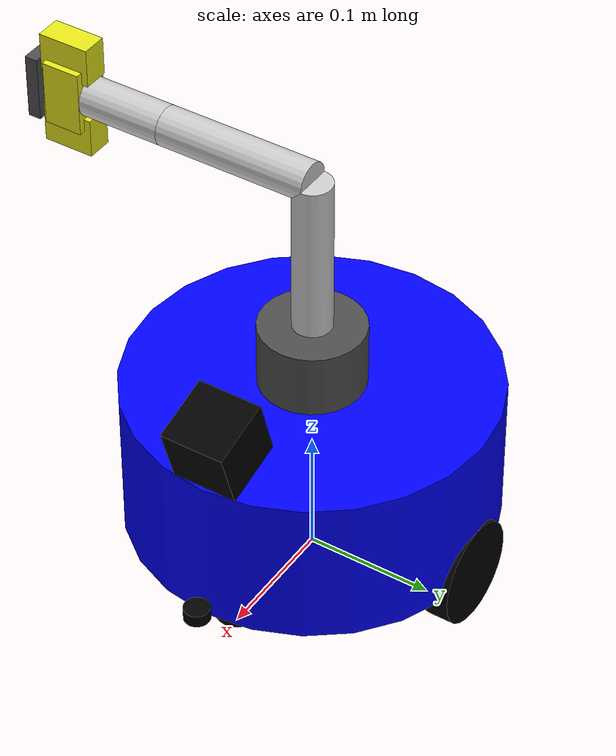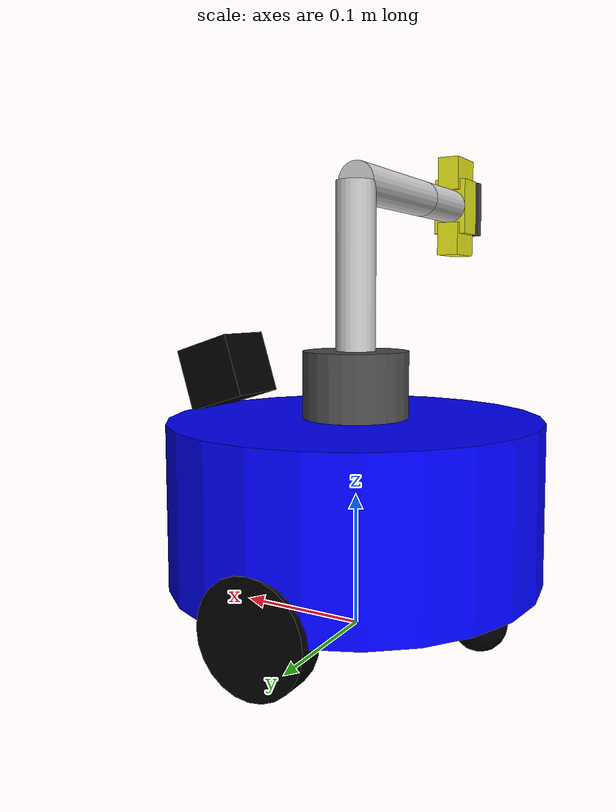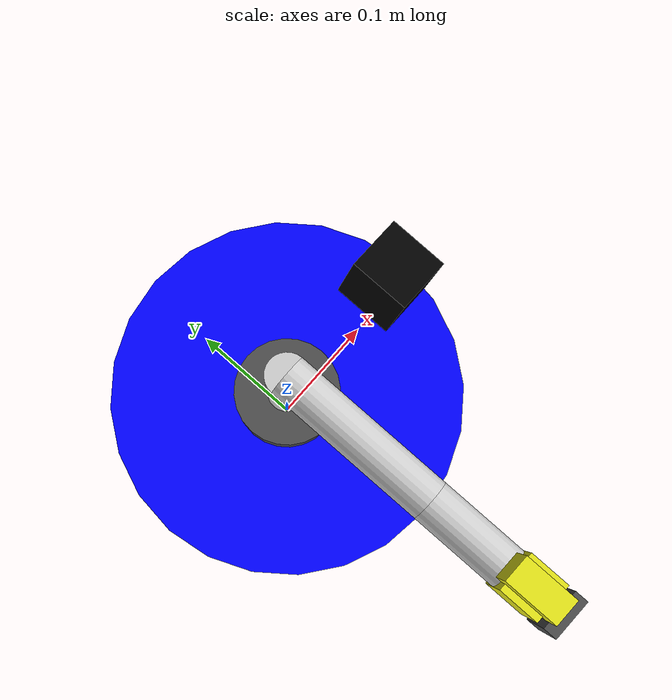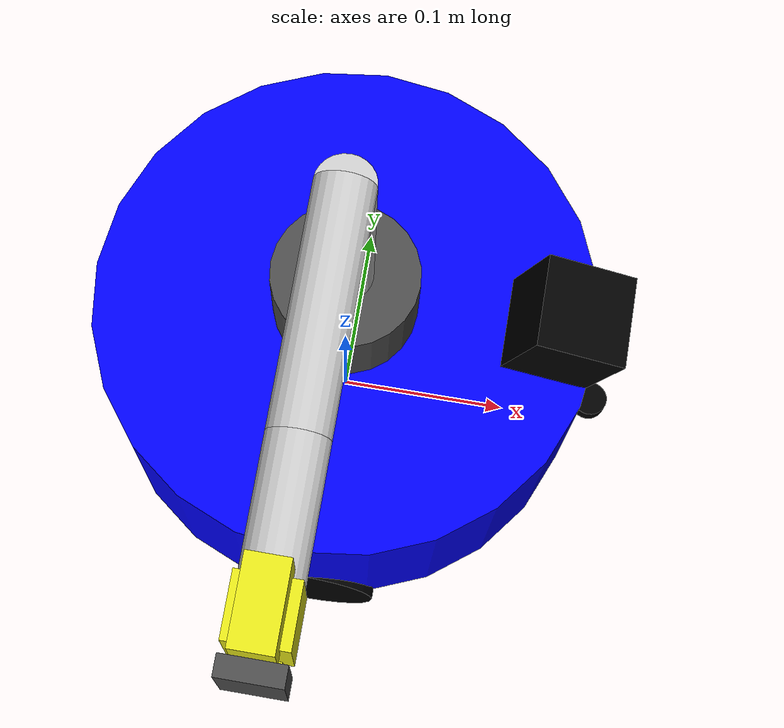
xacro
<?xml version="1.0"?>
<robot xmlns:xacro="http://www.ros.org/wiki/xacro" name="my_robot">
    <xacro:arg name="initial_positions_file" default="initial_positions.yaml" />

    <!-- Import my_robot urdf file -->
    <xacro:include filename="$(find my_robot_description)/urdf/robot.urdf.xacro" />

    <!-- Import control_xacro -->
    <xacro:include filename="my_robot.ros2_control.xacro" />

    <xacro:my_robot_ros2_control name="FakeSystem" initial_positions_file="$(arg initial_positions_file)"/>

</robot>

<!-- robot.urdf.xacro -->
<robot name="my_robot" xmlns:xacro="http://www.ros.org/wiki/xacro">

  <!-- ==================== 引入通用宏 ==================== -->
  <xacro:include filename="$(find my_robot_description)/urdf/common/materials.xacro"/>
  <xacro:include filename="$(find my_robot_description)/urdf/common/inertia_macros.xacro"/>

  <!-- ==================== 引入模块 ==================== -->
  <!-- 底盘 -->
  <xacro:include filename="$(find my_robot_description)/urdf/base/mobile_base.xacro"/>
  <!-- 机械臂 -->
  <xacro:include filename="$(find my_robot_description)/urdf/arm/simple_arm.xacro"/>
  <!-- 传感器 -->
  <xacro:include filename="$(find my_robot_description)/urdf/sensors/lidar.xacro"/>
  <xacro:include filename="$(find my_robot_description)/urdf/sensors/camera.xacro"/>
  <xacro:include filename="$(find my_robot_description)/urdf/sensors/gripper.xacro"/>
  <xacro:include filename="$(find my_robot_description)/urdf/sensors/imu.xacro"/>
  <!-- Gazebo 插件 -->
  <xacro:include filename="$(find my_robot_description)/urdf/base/mobile_base_gazebo.xacro"/>
  <xacro:include filename="$(find my_robot_description)/urdf/arm/simple_arm_gazebo.xacro"/>

  <!-- ==================== 机器人总装 ==================== -->

  <!-- 1. 底盘 -->
  <xacro:mobile_base/>

  <!-- 2. 机械臂（安装在底盘上） -->
  <xacro:simple_arm prefix="arm_"/>

  <!-- 3. 传感器 -->
  <xacro:lidar_sensor prefix="lidar"/>
  <xacro:depth_camera prefix="camera"/>
  <xacro:imu_sensor prefix="imu"/>

  <!-- 4. 夹爪（安装在机械臂末端） -->
  <xacro:simple_gripper prefix="gripper" parent_link="arm_gripper_link"/>

  <xacro:mobile_base_gazebo_plugin />

</robot>

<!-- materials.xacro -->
<robot xmlns:xacro="http://www.ros.org/wiki/xacro">

  <!-- ==================== 材料定义 ==================== -->

  <!-- 与底盘一致的蓝色 -->
  <material name="blue">
    <color rgba="0.0 0.0 1.0 1.0"/>
  </material>

  <!-- 与底盘一致的黑色 -->
  <material name="black">
    <color rgba="0.0 0.0 0.0 1.0"/>
  </material>

  <!-- 机械臂颜色 -->
  <material name="arm_blue">
    <color rgba="0.1 0.3 0.8 1.0"/>
  </material>

  <!-- 传感器颜色 -->
  <material name="sensor_red">
    <color rgba="0.9 0.1 0.1 1.0"/>
  </material>

  <!-- 夹爪颜色 -->
  <material name="gripper_yellow">
    <color rgba="0.9 0.9 0.1 1.0"/>
  </material>

</robot>

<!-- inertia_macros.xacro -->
<robot xmlns:xacro="http://www.ros.org/wiki/xacro">

    <xacro:macro name="cylinder_inertia" params="m r h">
        <inertial>
            <origin xyz="0 0 0" rpy="0 0 0" />
            <mass value="${m}" />
            <inertia ixx="${(m/12) * (3*r*r + h*h)}" ixy="0" ixz="0"
                     iyy="${(m/12) * (3*r*r + h*h)}" iyz="0"
                     izz="${(m/2) * (r*r)}" />
        </inertial>
    </xacro:macro>

    <xacro:macro name="sphere_inertia" params="m r">
        <inertial>
            <origin xyz="0 0 0" rpy="0 0 0" />
            <mass value="${m}" />
            <inertia ixx="${(2/5) * m * r * r}" ixy="0" ixz="0"
                     iyy="${(2/5) * m * r * r}" iyz="0"
                     izz="${(2/5) * m * r * r}" />
        </inertial>
    </xacro:macro>

    <!-- 添加长方体惯性宏 -->
    <xacro:macro name="box_inertia" params="m x y z">
        <inertial>
            <origin xyz="0 0 0" rpy="0 0 0" />
            <mass value="${m}" />
            <inertia ixx="${(m/12) * (y*y + z*z)}" ixy="0" ixz="0"
                     iyy="${(m/12) * (x*x + z*z)}" iyz="0"
                     izz="${(m/12) * (x*x + y*y)}" />
        </inertial>
    </xacro:macro>

</robot>

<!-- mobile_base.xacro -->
<robot xmlns:xacro="http://www.ros.org/wiki/xacro">

  <xacro:macro name="mobile_base">

    <!-- ========== 参数 ========== -->
    <xacro:property name="chassis_radius" value="0.14" />
    <xacro:property name="chassis_height" value="0.12" />
    <xacro:property name="chassis_mass" value="10.0" />

    <xacro:property name="wheel_radius" value="0.04" />
    <xacro:property name="wheel_width" value="0.02" />
    <xacro:property name="wheel_offset_y" value="0.13" />

    <xacro:property name="caster_radius" value="0.02" />
    <xacro:property name="caster_offset_x" value="0.10" />

    <!-- ========== base footprint ========== -->
    <link name="base_footprint">

    </link>

    <joint name="base_joint" type="fixed">
      <parent link="base_footprint"/>
      <child link="base_link"/>
      <origin xyz="0 0 ${wheel_radius}" rpy="0 0 0"/>
    </joint>

    <!-- ========== base link ========== -->
    <link name="base_link">
      <visual>
        <origin xyz="0 0 ${chassis_height/2}" rpy="0 0 0"/>
        <geometry>
          <cylinder radius="${chassis_radius}" length="${chassis_height}"/>
        </geometry>
        <material name="blue"/>
      </visual>
      <collision>
        <origin xyz="0 0 ${chassis_height/2}" rpy="0 0 0"/>
        <geometry>
          <cylinder radius="${chassis_radius}" length="${chassis_height}"/>
        </geometry>
      </collision>
      <xacro:cylinder_inertia
        m="${chassis_mass}"
        r="${chassis_radius}"
        h="${chassis_height}"/>
    </link>

    <!-- ========== 轮子宏 ========== -->
    <xacro:macro name="wheel" params="prefix y_reflect">

      <link name="${prefix}_wheel_link">
        <visual>
          <!-- 轮子横放 -->
          <origin xyz="0 0 0" rpy="${pi/2} 0 0"/>
          <geometry>
            <cylinder radius="${wheel_radius}" length="${wheel_width}"/>
          </geometry>
          <material name="black"/>
        </visual>
        <collision>
          <origin xyz="0 0 0" rpy="${pi/2} 0 0"/>
          <geometry>
            <cylinder radius="${wheel_radius}" length="${wheel_width}"/>
          </geometry>
        </collision>

        <!-- ★★★ 关键修改：惯性矩阵的轴要与轮一致 ★★★ -->
        <inertial>
          <origin xyz="0 0 0" rpy="${pi/2} 0 0"/>
          <mass value="0.5"/>
          <inertia
            ixx="${(0.5/12) * (3*wheel_radius*wheel_radius + wheel_width*wheel_width)}"
            ixy="0" ixz="0"
            iyy="${(0.5/12) * (3*wheel_radius*wheel_radius + wheel_width*wheel_width)}"
            iyz="0"
            izz="${(0.5/2) * (wheel_radius*wheel_radius)}"/>
        </inertial>

      </link>

      <!-- ★★★ 关键修改：axis 改为   轴 ★★★ -->
      <joint name="${prefix}_wheel_joint" type="continuous">
        <parent link="base_link"/>
        <child link="${prefix}_wheel_link"/>
        <origin xyz="0 ${y_reflect * wheel_offset_y} 0" rpy="0 0 0"/>
        <axis xyz="0 1 0"/>
        <limit effort="0.2" velocity="20.0"/>
      </joint>

      <gazebo reference="${prefix}_wheel_link">
        <mu1>1.0</mu1>
        <mu2>1.0</mu2>
        <kp>1000000.0</kp>
        <kd>100.0</kd>
        <gravity>true</gravity>
        <self_collide>false</self_collide>
      </gazebo>

    </xacro:macro>

    <!-- 左右轮 -->
    <xacro:wheel prefix="left"  y_reflect="1"/>
    <xacro:wheel prefix="right" y_reflect="-1"/>

    <!-- ========== 脚轮 ========== -->
    <xacro:macro name="caster_wheel" params="prefix x_reflect">

      <link name="${prefix}_caster_wheel">
        <visual>
          <geometry>
            <sphere radius="${caster_radius}"/>
          </geometry>
          <material name="black"/>
        </visual>
        <collision>
          <geometry>
            <sphere radius="${caster_radius}"/>
          </geometry>
        </collision>
        <xacro:sphere_inertia m="0.1" r="${caster_radius}"/>
      </link>

      <joint name="${prefix}_caster_joint" type="fixed">
        <parent link="base_link"/>
        <child link="${prefix}_caster_wheel"/>
        <origin xyz="${x_reflect * caster_offset_x} 0 ${caster_radius - wheel_radius}" rpy="0 0 0"/>
      </joint>

      <gazebo reference="${prefix}_caster_wheel">
        <mu1>0.001</mu1>
        <mu2>0.001</mu2>
        <gravity>true</gravity>
      </gazebo>

    </xacro:macro>

    <xacro:caster_wheel prefix="front" x_reflect="1"/>
    <xacro:caster_wheel prefix="back"  x_reflect="-1"/>

  </xacro:macro>
</robot>

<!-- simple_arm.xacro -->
<robot xmlns:xacro="http://www.ros.org/wiki/xacro">

  <xacro:macro name="simple_arm" params="prefix:='arm_'">

    <!-- 机械臂参数定义 - 与底盘风格一致 -->
    <xacro:property name="base_radius" value="0.04" />
    <xacro:property name="base_height" value="0.05" />
    <xacro:property name="base_mass" value="0.5" />
    <xacro:property name="link1_length" value="0.15" />
    <xacro:property name="link2_length" value="0.12" />
    <xacro:property name="link3_length" value="0.08" />
    <xacro:property name="link_radius" value="0.015" />
    <xacro:property name="link1_mass" value="0.3" />
    <xacro:property name="link2_mass" value="0.2" />
    <xacro:property name="link3_mass" value="0.1" />
    <xacro:property name="gripper_length" value="0.05" />
    <xacro:property name="gripper_width" value="0.03" />
    <xacro:property name="gripper_mass" value="0.05" />

    <!-- 机械臂材质定义 -->
    <material name="arm_silver">
      <color rgba="0.8 0.8 0.8 1.0"/>
    </material>

    <material name="arm_dark_gray">
      <color rgba="0.3 0.3 0.3 1.0"/>
    </material>

    <!-- 机械臂基座连接到底盘 - 安装在底盘顶部中央 -->
    <joint name="${prefix}base_joint" type="fixed">
      <parent link="base_link" />
      <child link="${prefix}base_link" />
      <origin xyz="0.0 0.0 ${0.12}" rpy="0 0 0" />
    </joint>

    <!-- 1. 机械臂基座 -->
    <link name="${prefix}base_link">
      <visual>
        <origin xyz="0 0 ${base_height/2}" rpy="0 0 0" />
        <geometry>
          <cylinder radius="${base_radius}" length="${base_height}" />
        </geometry>
        <material name="arm_dark_gray" />
      </visual>
      <collision>
        <origin xyz="0 0 ${base_height/2}" rpy="0 0 0" />
        <geometry>
          <cylinder radius="${base_radius}" length="${base_height}" />
        </geometry>
      </collision>
      <xacro:cylinder_inertia m="${base_mass}" r="${base_radius}" h="${base_height}" />
    </link>

    <!-- 2. 第一个旋转关节 (肩部旋转) -->
    <joint name="${prefix}shoulder_pan_joint" type="revolute">
      <parent link="${prefix}base_link" />
      <child link="${prefix}link1" />
      <origin xyz="0 0 ${base_height/2}" rpy="0 0 0" />
      <axis xyz="0 0 1" />
      <limit lower="${-pi}" upper="${pi}" effort="10" velocity="1.0" />
    </joint>

    <link name="${prefix}link1">
      <visual>
        <origin xyz="0 0 ${link1_length/2}" rpy="0 0 0" />
        <geometry>
          <cylinder radius="${link_radius}" length="${link1_length}" />
        </geometry>
        <material name="arm_silver" />
      </visual>
      <collision>
        <origin xyz="0 0 ${link1_length/2}" rpy="0 0 0" />
        <geometry>
          <cylinder radius="${link_radius}" length="${link1_length}" />
        </geometry>
      </collision>
      <xacro:cylinder_inertia m="${link1_mass}" r="${link_radius}" h="${link1_length}" />
    </link>

    <!-- 3. 第二个俯仰关节 (肩部俯仰) -->
    <joint name="${prefix}shoulder_pitch_joint" type="revolute">
      <parent link="${prefix}link1" />
      <child link="${prefix}link2" />
      <origin xyz="0 0 ${link1_length}" rpy="${pi/2} 0 0" />
      <axis xyz="0 1 0" />
      <limit lower="${-pi/2}" upper="${pi/2}" effort="8" velocity="1.0" />
    </joint>

    <link name="${prefix}link2">
      <visual>
        <origin xyz="0 0 ${link2_length/2}" rpy="0 0 0" />
        <geometry>
          <cylinder radius="${link_radius}" length="${link2_length}" />
        </geometry>
        <material name="arm_silver" />
      </visual>
      <collision>
        <origin xyz="0 0 ${link2_length/2}" rpy="0 0 0" />
        <geometry>
          <cylinder radius="${link_radius}" length="${link2_length}" />
        </geometry>
      </collision>
      <xacro:cylinder_inertia m="${link2_mass}" r="${link_radius}" h="${link2_length}" />
    </link>

    <!-- 4. 第三个俯仰关节 (肘部俯仰) -->
    <joint name="${prefix}elbow_pitch_joint" type="revolute">
      <parent link="${prefix}link2" />
      <child link="${prefix}link3" />
      <origin xyz="0 0 ${link2_length}" rpy="0 0 0" />
      <axis xyz="0 1 0" />
      <limit lower="${-pi/2}" upper="${pi/2}" effort="5" velocity="1.0" />
    </joint>

    <link name="${prefix}link3">
      <visual>
        <origin xyz="0 0 ${link3_length/2}" rpy="0 0 0" />
        <geometry>
          <cylinder radius="${link_radius}" length="${link3_length}" />
        </geometry>
        <material name="arm_silver" />
      </visual>
      <collision>
        <origin xyz="0 0 ${link3_length/2}" rpy="0 0 0" />
        <geometry>
          <cylinder radius="${link_radius}" length="${link3_length}" />
        </geometry>
      </collision>
      <xacro:cylinder_inertia m="${link3_mass}" r="${link_radius}" h="${link3_length}" />
    </link>

    <!-- 5. 末端执行器 (简单的夹爪) -->
    <joint name="${prefix}gripper_fixed_joint" type="fixed">
      <parent link="${prefix}link3" />
      <child link="${prefix}gripper_link" />
      <origin xyz="0 0 ${link3_length}" rpy="0 0 0" />
    </joint>

    <link name="${prefix}gripper_link">
      <visual>
        <origin xyz="0 0 ${gripper_length/2}" rpy="${pi/2} 0 0" />
        <geometry>
          <box size="${gripper_width} 0.01 ${gripper_length}" />
        </geometry>
        <material name="arm_dark_gray" />
      </visual>
      <collision>
        <origin xyz="0 0 ${gripper_length/2}" rpy="${pi/2} 0 0" />
        <geometry>
          <box size="${gripper_width} 0.01 ${gripper_length}" />
        </geometry>
      </collision>
      <!-- 使用圆柱体惯性近似长方体夹爪 -->
      <xacro:cylinder_inertia m="${gripper_mass}" r="${gripper_width/2}" h="0.01" />
    </link>

  </xacro:macro>

</robot>

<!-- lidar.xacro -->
<robot xmlns:xacro="http://www.ros.org/wiki/xacro">

  <xacro:macro name="lidar_sensor" params="prefix:='lidar'">

    <link name="${prefix}_link">
      <visual>
        <origin xyz="0 0 0" rpy="0 0 0"/>
        <geometry>
          <cylinder length="0.01" radius="0.01"/>
        </geometry>
        <material name="black"/>
      </visual>
      <collision>
        <origin xyz="0 0 0" rpy="0 0 0"/>
        <geometry>
          <cylinder length="0.01" radius="0.01"/>
        </geometry>
      </collision>
      <xacro:cylinder_inertia m="0.1" r="0.05" h="0.05"/>
    </link>

    <joint name="${prefix}_joint" type="fixed">
      <parent link="base_link"/>
      <child link="${prefix}_link"/>
      <origin xyz="0.15 0 0.01" rpy="0 0 0"/>
    </joint>

    <gazebo reference="${prefix}_link">
      <sensor name="${prefix}" type="gpu_lidar">

        <topic>/scan</topic>

        <frame_id>${prefix}_link</frame_id>

        <pose>0 0 0 0 0 0</pose>
        <visualize>false</visualize>
        <update_rate>10</update_rate>
        <ray>
          <scan>
            <horizontal>
              <samples>720</samples>
              <resolution>1.0</resolution>
              <min_angle>-3.14159</min_angle>
              <max_angle>3.14159</max_angle>
            </horizontal>
          </scan>
          <range>
            <min>0.2</min>
            <max>10.0</max>
            <resolution>0.01</resolution>
          </range>
        </ray>
      </sensor>
    </gazebo>

  </xacro:macro>

</robot>

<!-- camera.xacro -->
<robot xmlns:xacro="http://www.ros.org/wiki/xacro">

  <!-- ==================== 深度相机 ==================== -->

  <xacro:macro name="depth_camera" params="prefix:='camera'">

    <!-- 相机连杆 -->
    <link name="${prefix}_link">
      <visual>
        <origin xyz="0 0 0" rpy="0 0 0"/>
        <geometry>
          <box size="0.05 0.05 0.05"/>
        </geometry>
        <material name="black"/>  <!-- 改为黑色 -->
      </visual>
      <collision>
        <origin xyz="0 0 0" rpy="0 0 0"/>
        <geometry>
          <box size="0.05 0.05 0.05"/>
        </geometry>
      </collision>
      <xacro:box_inertia m="0.05" x="0.05" y="0.05" z="0.05"/>
    </link>

    <!-- 关节 - 安装在底盘前方 -->
    <joint name="${prefix}_joint" type="fixed">
      <parent link="base_link"/>
      <child link="${prefix}_link"/>
      <origin xyz="0.12 0 0.15" rpy="0 0.3 0"/>  <!-- 稍微倾斜向下 -->
    </joint>

    <!-- Gazebo 插件：深度相机 -->
    <gazebo reference="${prefix}_link">
      <sensor name="${prefix}" type="camera">
        <topic>${prefix}/image_raw</topic>

        <camera>
          <horizontal_fov>1.0472</horizontal_fov>
          <image>
            <width>640</width>
            <height>480</height>
            <format>R8G8B8</format>
          </image>
          <clip>
            <near>0.1</near>
            <far>10.0</far>
          </clip>
        </camera>
        <always_on>true</always_on>
        <update_rate>30.0</update_rate>

        </sensor>
    </gazebo>

  </xacro:macro>

</robot>

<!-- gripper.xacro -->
<robot xmlns:xacro="http://www.ros.org/wiki/xacro">

  <!-- ==================== 夹爪 ==================== -->

  <xacro:macro name="simple_gripper" params="prefix:='gripper' parent_link">

    <!-- 夹爪基座 -->
    <link name="${prefix}_base_link">
      <visual>
        <origin xyz="0 0 0" rpy="0 0 0"/>
        <geometry>
          <box size="0.03 0.05 0.03"/>
        </geometry>
        <material name="gripper_yellow"/>
      </visual>
      <collision>
        <origin xyz="0 0 0" rpy="0 0 0"/>
        <geometry>
          <box size="0.03 0.05 0.03"/>
        </geometry>
      </collision>
      <xacro:box_inertia m="0.05" x="0.03" y="0.05" z="0.03"/>
    </link>

    <!-- 左夹爪 -->
    <link name="${prefix}_left_link">
      <visual>
        <origin xyz="0 0 0" rpy="0 0 0"/>
        <geometry>
          <box size="0.02 0.03 0.04"/>
        </geometry>
        <material name="gripper_yellow"/>
      </visual>
      <collision>
        <origin xyz="0 0 0" rpy="0 0 0"/>
        <geometry>
          <box size="0.02 0.03 0.04"/>
        </geometry>
      </collision>
      <xacro:box_inertia m="0.02" x="0.02" y="0.03" z="0.04"/>
    </link>

    <!-- 右夹爪 -->
    <link name="${prefix}_right_link">
      <visual>
        <origin xyz="0 0 0" rpy="0 0 0"/>
        <geometry>
          <box size="0.02 0.03 0.04"/>
        </geometry>
        <material name="gripper_yellow"/>
      </visual>
      <collision>
        <origin xyz="0 0 0" rpy="0 0 0"/>
        <geometry>
          <box size="0.02 0.03 0.04"/>
        </geometry>
      </collision>
      <xacro:box_inertia m="0.02" x="0.02" y="0.03" z="0.04"/>
    </link>

    <!-- 关节：基座 -->
    <joint name="${prefix}_base_joint" type="fixed">
      <parent link="${parent_link}"/>
      <child link="${prefix}_base_link"/>
      <origin xyz="0 0 0" rpy="0 0 0"/>
    </joint>

    <!-- 关节：左夹爪（平移关节） -->
    <joint name="${prefix}_left_joint" type="prismatic">
      <parent link="${prefix}_base_link"/>
      <child link="${prefix}_left_link"/>
      <origin xyz="0 0.03 0" rpy="0 0 0"/>
      <axis xyz="0 1 0"/>
      <limit effort="10" velocity="0.1" lower="-0.03" upper="0"/>
    </joint>

    <!-- 关节：右夹爪（平移关节） -->
    <joint name="${prefix}_right_joint" type="prismatic">
      <parent link="${prefix}_base_link"/>
      <child link="${prefix}_right_link"/>
      <origin xyz="0 -0.03 0" rpy="0 0 0"/>
      <axis xyz="0 -1 0"/>
      <limit effort="10" velocity="0.1" lower="-0.03" upper="0"/>
    </joint>

    <!-- Gazebo 插件：夹爪摩擦力设置 -->
    <gazebo reference="${prefix}_left_link">
      <material>Gazebo/Yellow</material>
      <mu1>100.0</mu1>
      <mu2>100.0</mu2>
      <kp>1000000.0</kp>
      <kd>1.0</kd>
    </gazebo>
    <gazebo reference="${prefix}_right_link">
      <material>Gazebo/Yellow</material>
      <mu1>100.0</mu1>
      <mu2>100.0</mu2>
      <kp>1000000.0</kp>
      <kd>1.0</kd>
    </gazebo>

  </xacro:macro>

</robot>

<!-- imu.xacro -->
<robot xmlns:xacro="http://www.ros.org/wiki/xacro">
  <xacro:macro name="imu_sensor" params="prefix:='imu'">

    <link name="${prefix}_link">
      <visual>
        <geometry>
          <box size="0.02 0.02 0.01"/>
        </geometry>
        <material name="black"/>
      </visual>

      <collision>
        <geometry>
          <box size="0.02 0.02 0.01"/>
        </geometry>
      </collision>

      <xacro:box_inertia m="0.01" x="0.02" y="0.02" z="0.01"/>
    </link>

    <joint name="${prefix}_joint" type="fixed">
      <parent link="base_link"/>
      <child link="${prefix}_link"/>
      <origin xyz="0 0 0.15" rpy="0 0 0"/>
    </joint>

    <gazebo reference="${prefix}_link">
      <sensor name="${prefix}_sensor" type="imu">
        <always_on>1</always_on>
        <update_rate>100</update_rate>
        <visualize>true</visualize>
        <topic>${prefix}/data</topic>
        <imu>
          <angular_velocity>
            <x><noise type="gaussian"><mean>0.0</mean><stddev>2e-4</stddev></noise></x>
            <y><noise type="gaussian"><mean>0.0</mean><stddev>2e-4</stddev></noise></y>
            <z><noise type="gaussian"><mean>0.0</mean><stddev>2e-4</stddev></noise></z>
          </angular_velocity>
          <linear_acceleration>
            <x><noise type="gaussian"><mean>0.0</mean><stddev>1.7e-2</stddev></noise></x>
            <y><noise type="gaussian"><mean>0.0</mean><stddev>1.7e-2</stddev></noise></y>
            <z><noise type="gaussian"><mean>0.0</mean><stddev>1.7e-2</stddev></noise></z>
          </linear_acceleration>
        </imu>
      </sensor>
    </gazebo>
  </xacro:macro>
</robot>
